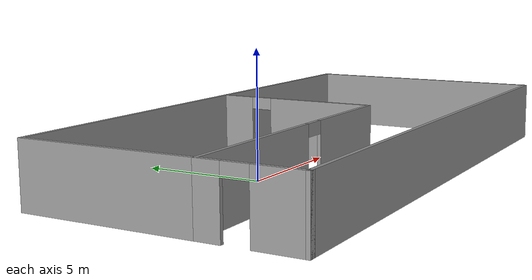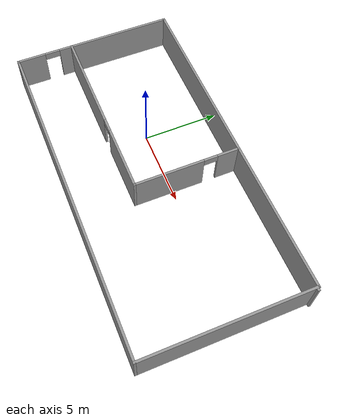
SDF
<?xml version='1.0'?>
<sdf version='1.6'>
  <model name='homeServiceBuilding'>
    <pose frame=''>3.35994 -0.947617 0 0 -0 0</pose>
    <link name='Wall_0'>
      <collision name='Wall_0_Collision'>
        <geometry>
          <box>
            <size>7 0.15 2.5</size>
          </box>
        </geometry>
        <pose frame=''>0 0 1.25 0 -0 0</pose>
      </collision>
      <visual name='Wall_0_Visual'>
        <pose frame=''>0 0 1.25 0 -0 0</pose>
        <geometry>
          <box>
            <size>7 0.15 2.5</size>
          </box>
        </geometry>
        <material>
          <script>
            <uri>file://media/materials/scripts/gazebo.material</uri>
            <name>Gazebo/Grey</name>
          </script>
          <ambient>1 1 1 1</ambient>
        </material>
        <meta>
          <layer>0</layer>
        </meta>
      </visual>
      <pose frame=''>-10.8 1.875 0 0 -0 1.5708</pose>
    </link>
    <link name='Wall_1'>
      <collision name='Wall_1_Collision'>
        <geometry>
          <box>
            <size>12 0.15 2.5</size>
          </box>
        </geometry>
        <pose frame=''>0 0 1.25 0 -0 0</pose>
      </collision>
      <visual name='Wall_1_Visual'>
        <pose frame=''>0 0 1.25 0 -0 0</pose>
        <geometry>
          <box>
            <size>12 0.15 2.5</size>
          </box>
        </geometry>
        <material>
          <script>
            <uri>file://media/materials/scripts/gazebo.material</uri>
            <name>Gazebo/Grey</name>
          </script>
          <ambient>1 1 1 1</ambient>
        </material>
        <meta>
          <layer>0</layer>
        </meta>
      </visual>
      <pose frame=''>-4.875 5.3 0 0 -0 0</pose>
    </link>
    <link name='Wall_10'>
      <collision name='Wall_10_Collision'>
        <geometry>
          <box>
            <size>9.75 0.15 2.5</size>
          </box>
        </geometry>
        <pose frame=''>0 0 1.25 0 -0 0</pose>
      </collision>
      <visual name='Wall_10_Visual'>
        <pose frame=''>0 0 1.25 0 -0 0</pose>
        <geometry>
          <box>
            <size>9.75 0.15 2.5</size>
          </box>
        </geometry>
        <material>
          <script>
            <uri>file://media/materials/scripts/gazebo.material</uri>
            <name>Gazebo/Grey</name>
          </script>
          <ambient>1 1 1 1</ambient>
        </material>
        <meta>
          <layer>0</layer>
        </meta>
      </visual>
      <pose frame=''>5.85 5.3 0 0 -0 0</pose>
    </link>
    <link name='Wall_11'>
      <collision name='Wall_11_Collision'>
        <geometry>
          <box>
            <size>0.15 0.15 2.5</size>
          </box>
        </geometry>
        <pose frame=''>0 0 1.25 0 -0 0</pose>
      </collision>
      <visual name='Wall_11_Visual'>
        <pose frame=''>0 0 1.25 0 -0 0</pose>
        <geometry>
          <box>
            <size>0.15 0.15 2.5</size>
          </box>
        </geometry>
        <material>
          <script>
            <uri>file://media/materials/scripts/gazebo.material</uri>
            <name>Gazebo/Grey</name>
          </script>
          <ambient>1 1 1 1</ambient>
        </material>
        <meta>
          <layer>0</layer>
        </meta>
      </visual>
      <pose frame=''>10.65 5.3 0 0 -0 0</pose>
    </link>
    <link name='Wall_14'>
      <collision name='Wall_14_Collision'>
        <geometry>
          <box>
            <size>10.75 0.15 2.5</size>
          </box>
        </geometry>
        <pose frame=''>0 0 1.25 0 -0 0</pose>
      </collision>
      <visual name='Wall_14_Visual'>
        <pose frame=''>0 0 1.25 0 -0 0</pose>
        <geometry>
          <box>
            <size>10.75 0.15 2.5</size>
          </box>
        </geometry>
        <material>
          <script>
            <uri>file://media/materials/scripts/gazebo.material</uri>
            <name>Gazebo/Grey</name>
          </script>
          <ambient>1 1 1 1</ambient>
        </material>
        <meta>
          <layer>0</layer>
        </meta>
      </visual>
      <pose frame=''>10.65 0 0 0 0 -1.5708</pose>
    </link>
    <link name='Wall_15'>
      <collision name='Wall_15_Collision'>
        <geometry>
          <box>
            <size>21.5 0.15 2.5</size>
          </box>
        </geometry>
        <pose frame=''>0 0 1.25 0 -0 0</pose>
      </collision>
      <visual name='Wall_15_Visual'>
        <pose frame=''>0 0 1.25 0 -0 0</pose>
        <geometry>
          <box>
            <size>21.5 0.15 2.5</size>
          </box>
        </geometry>
        <material>
          <script>
            <uri>file://media/materials/scripts/gazebo.material</uri>
            <name>Gazebo/Grey</name>
          </script>
          <ambient>1 1 1 1</ambient>
        </material>
        <meta>
          <layer>0</layer>
        </meta>
      </visual>
      <pose frame=''>-0.025 -5.3 0 0 -0 3.14159</pose>
    </link>
    <link name='Wall_16'>
      <collision name='Wall_16_Collision'>
        <geometry>
          <box>
            <size>0.15 0.15 2.5</size>
          </box>
        </geometry>
        <pose frame=''>0 0 1.25 0 -0 0</pose>
      </collision>
      <visual name='Wall_16_Visual'>
        <pose frame=''>0 0 1.25 0 -0 0</pose>
        <geometry>
          <box>
            <size>0.15 0.15 2.5</size>
          </box>
        </geometry>
        <material>
          <script>
            <uri>file://media/materials/scripts/gazebo.material</uri>
            <name>Gazebo/Grey</name>
          </script>
          <ambient>1 1 1 1</ambient>
        </material>
        <meta>
          <layer>0</layer>
        </meta>
      </visual>
      <pose frame=''>-10.7 -5.3 0 0 -0 0</pose>
    </link>
    <link name='Wall_17'>
      <collision name='Wall_17_Collision'>
        <geometry>
          <box>
            <size>0.25 0.15 2.5</size>
          </box>
        </geometry>
        <pose frame=''>0 0 1.25 0 -0 0</pose>
      </collision>
      <visual name='Wall_17_Visual'>
        <pose frame=''>0 0 1.25 0 -0 0</pose>
        <geometry>
          <box>
            <size>0.25 0.15 2.5</size>
          </box>
        </geometry>
        <material>
          <script>
            <uri>file://media/materials/scripts/gazebo.material</uri>
            <name>Gazebo/Grey</name>
          </script>
          <ambient>1 1 1 1</ambient>
        </material>
        <meta>
          <layer>0</layer>
        </meta>
      </visual>
      <pose frame=''>-10.75 -5.3 0 0 -0 3.14159</pose>
    </link>
    <link name='Wall_18'>
      <pose frame=''>-10.8 -3.425 0 0 -0 1.5708</pose>
      <visual name='Wall_18_Visual_0'>
        <pose frame=''>-0.980045 0 1.25 0 -0 0</pose>
        <geometry>
          <box>
            <size>1.93991 0.15 2.5</size>
          </box>
        </geometry>
        <material>
          <script>
            <uri>file://media/materials/scripts/gazebo.material</uri>
            <name>Gazebo/Grey</name>
          </script>
          <ambient>1 1 1 1</ambient>
        </material>
        <meta>
          <layer>0</layer>
        </meta>
      </visual>
      <collision name='Wall_18_Collision_0'>
        <geometry>
          <box>
            <size>1.93991 0.15 2.5</size>
          </box>
        </geometry>
        <pose frame=''>-0.980045 0 1.25 0 -0 0</pose>
      </collision>
      <visual name='Wall_18_Visual_1'>
        <pose frame=''>1.47186 0 1.25 0 -0 0</pose>
        <geometry>
          <box>
            <size>0.956273 0.15 2.5</size>
          </box>
        </geometry>
        <material>
          <script>
            <uri>file://media/materials/scripts/gazebo.material</uri>
            <name>Gazebo/Grey</name>
          </script>
          <ambient>1 1 1 1</ambient>
        </material>
        <meta>
          <layer>0</layer>
        </meta>
      </visual>
      <collision name='Wall_18_Collision_1'>
        <geometry>
          <box>
            <size>0.956273 0.15 2.5</size>
          </box>
        </geometry>
        <pose frame=''>1.47186 0 1.25 0 -0 0</pose>
      </collision>
      <visual name='Wall_18_Visual_2'>
        <pose frame=''>0.491819 0 2.25 0 -0 0</pose>
        <geometry>
          <box>
            <size>1.00382 0.15 0.5</size>
          </box>
        </geometry>
        <material>
          <script>
            <uri>file://media/materials/scripts/gazebo.material</uri>
            <name>Gazebo/Grey</name>
          </script>
          <ambient>1 1 1 1</ambient>
        </material>
        <meta>
          <layer>0</layer>
        </meta>
      </visual>
      <collision name='Wall_18_Collision_2'>
        <geometry>
          <box>
            <size>1.00382 0.15 0.5</size>
          </box>
        </geometry>
        <pose frame=''>0.491819 0 2.25 0 -0 0</pose>
      </collision>
    </link>
    <link name='Wall_2'>
      <pose frame=''>1.05 1.875 0 0 0 -1.5708</pose>
      <visual name='Wall_2_Visual_0'>
        <pose frame=''>-2.74745 0 1.25 0 -0 0</pose>
        <geometry>
          <box>
            <size>1.5051 0.15 2.5</size>
          </box>
        </geometry>
        <material>
          <script>
            <uri>file://media/materials/scripts/gazebo.material</uri>
            <name>Gazebo/Grey</name>
          </script>
          <ambient>1 1 1 1</ambient>
        </material>
        <meta>
          <layer>0</layer>
        </meta>
      </visual>
      <collision name='Wall_2_Collision_0'>
        <geometry>
          <box>
            <size>1.5051 0.15 2.5</size>
          </box>
        </geometry>
        <pose frame=''>-2.74745 0 1.25 0 -0 0</pose>
      </collision>
      <visual name='Wall_2_Visual_1'>
        <pose frame=''>1.20255 0 1.25 0 -0 0</pose>
        <geometry>
          <box>
            <size>4.5949 0.15 2.5</size>
          </box>
        </geometry>
        <material>
          <script>
            <uri>file://media/materials/scripts/gazebo.material</uri>
            <name>Gazebo/Grey</name>
          </script>
          <ambient>1 1 1 1</ambient>
        </material>
        <meta>
          <layer>0</layer>
        </meta>
      </visual>
      <collision name='Wall_2_Collision_1'>
        <geometry>
          <box>
            <size>4.5949 0.15 2.5</size>
          </box>
        </geometry>
        <pose frame=''>1.20255 0 1.25 0 -0 0</pose>
      </collision>
      <visual name='Wall_2_Visual_2'>
        <pose frame=''>-1.5449 0 2.25 0 -0 0</pose>
        <geometry>
          <box>
            <size>0.9 0.15 0.5</size>
          </box>
        </geometry>
        <material>
          <script>
            <uri>file://media/materials/scripts/gazebo.material</uri>
            <name>Gazebo/Grey</name>
          </script>
          <ambient>1 1 1 1</ambient>
        </material>
        <meta>
          <layer>0</layer>
        </meta>
      </visual>
      <collision name='Wall_2_Collision_2'>
        <geometry>
          <box>
            <size>0.9 0.15 0.5</size>
          </box>
        </geometry>
        <pose frame=''>-1.5449 0 2.25 0 -0 0</pose>
      </collision>
    </link>
    <link name='Wall_3'>
      <pose frame=''>-4.875 -1.55 0 0 -0 3.14159</pose>
      <visual name='Wall_3_Visual_0'>
        <pose frame=''>-3.84356 0 1.25 0 -0 0</pose>
        <geometry>
          <box>
            <size>4.31288 0.15 2.5</size>
          </box>
        </geometry>
        <material>
          <script>
            <uri>file://media/materials/scripts/gazebo.material</uri>
            <name>Gazebo/Grey</name>
          </script>
          <ambient>1 1 1 1</ambient>
        </material>
        <meta>
          <layer>0</layer>
        </meta>
      </visual>
      <collision name='Wall_3_Collision_0'>
        <geometry>
          <box>
            <size>4.31288 0.15 2.5</size>
          </box>
        </geometry>
        <pose frame=''>-3.84356 0 1.25 0 -0 0</pose>
      </collision>
      <visual name='Wall_3_Visual_1'>
        <pose frame=''>2.60644 0 1.25 0 -0 0</pose>
        <geometry>
          <box>
            <size>6.78712 0.15 2.5</size>
          </box>
        </geometry>
        <material>
          <script>
            <uri>file://media/materials/scripts/gazebo.material</uri>
            <name>Gazebo/Grey</name>
          </script>
          <ambient>1 1 1 1</ambient>
        </material>
        <meta>
          <layer>0</layer>
        </meta>
      </visual>
      <collision name='Wall_3_Collision_1'>
        <geometry>
          <box>
            <size>6.78712 0.15 2.5</size>
          </box>
        </geometry>
        <pose frame=''>2.60644 0 1.25 0 -0 0</pose>
      </collision>
      <visual name='Wall_3_Visual_2'>
        <pose frame=''>-1.23712 0 2.25 0 -0 0</pose>
        <geometry>
          <box>
            <size>0.9 0.15 0.5</size>
          </box>
        </geometry>
        <material>
          <script>
            <uri>file://media/materials/scripts/gazebo.material</uri>
            <name>Gazebo/Grey</name>
          </script>
          <ambient>1 1 1 1</ambient>
        </material>
        <meta>
          <layer>0</layer>
        </meta>
      </visual>
      <collision name='Wall_3_Collision_2'>
        <geometry>
          <box>
            <size>0.9 0.15 0.5</size>
          </box>
        </geometry>
        <pose frame=''>-1.23712 0 2.25 0 -0 0</pose>
      </collision>
    </link>
    <link name='Wall_8'>
      <collision name='Wall_8_Collision'>
        <geometry>
          <box>
            <size>0.15 0.15 2.5</size>
          </box>
        </geometry>
        <pose frame=''>0 0 1.25 0 -0 0</pose>
      </collision>
      <visual name='Wall_8_Visual'>
        <pose frame=''>0 0 1.25 0 -0 0</pose>
        <geometry>
          <box>
            <size>0.15 0.15 2.5</size>
          </box>
        </geometry>
        <material>
          <script>
            <uri>file://media/materials/scripts/gazebo.material</uri>
            <name>Gazebo/Grey</name>
          </script>
          <ambient>1 1 1 1</ambient>
        </material>
        <meta>
          <layer>0</layer>
        </meta>
      </visual>
      <pose frame=''>10.8 5.2 0 0 -0 0</pose>
    </link>
    <static>1</static>
  </model>
</sdf>
